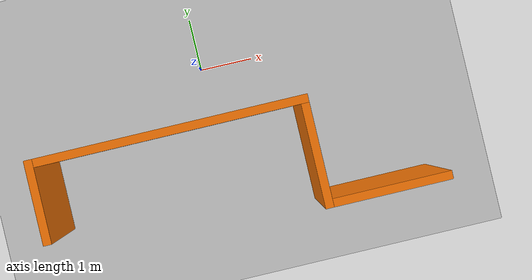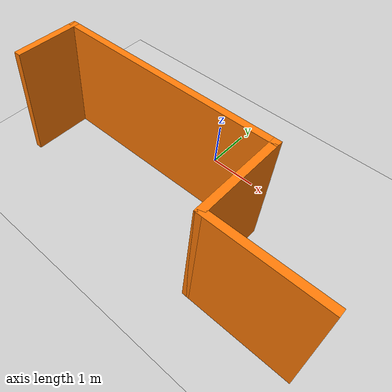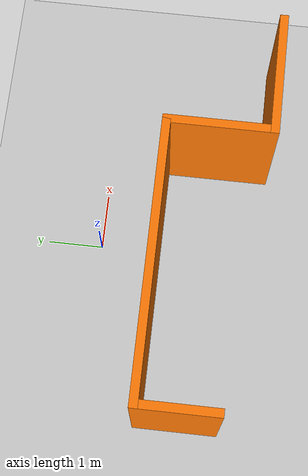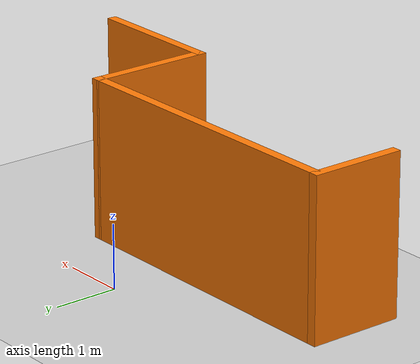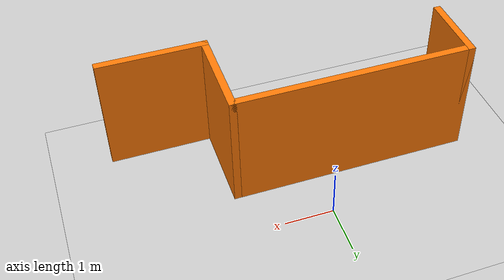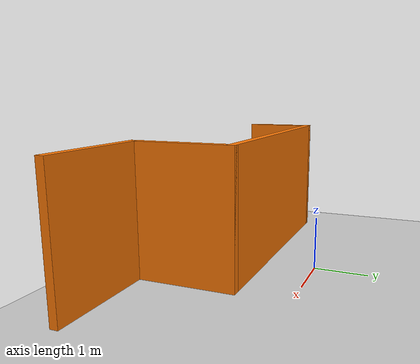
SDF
<?xml version="1.0" ?>
<sdf version="1.5">
  <world name="maze">
    <!-- A global light source -->
    <include>
      <uri>model://sun</uri>
    </include>
    <!-- A ground plane -->
    <include>
      <uri>model://ground_plane</uri>
    </include>
    <include>
      <uri>model://asphalt_plane</uri>
    </include>
    <physics name='default_physics' default='0' type='ode'>
      <gravity>0 0 -9.8066</gravity>
      <ode>
        <solver>
          <type>quick</type>
          <iters>10</iters>
          <sor>1.3</sor>
          <use_dynamic_moi_rescaling>0</use_dynamic_moi_rescaling>
        </solver>
        <constraints>
          <cfm>0</cfm>
          <erp>0.2</erp>
          <contact_max_correcting_vel>100</contact_max_correcting_vel>
          <contact_surface_layer>0.001</contact_surface_layer>
        </constraints>
      </ode>
      <max_step_size>0.004</max_step_size>
      <real_time_factor>1</real_time_factor>
      <real_time_update_rate>250</real_time_update_rate>
      <magnetic_field>6.0e-6 2.3e-5 -4.2e-5</magnetic_field>
    </physics>

<model name='just_test'>
    <pose frame=''>0.285 -1.945 0 0 -0 0</pose>
    <link name='Wall_0'>
      <collision name='Wall_0_Collision'>
        <geometry>
          <box>
            <size>1.5 0.15 2.5</size>
          </box>
        </geometry>
        <pose frame=''>0 0 1.25 0 -0 0</pose>
      </collision>
      <visual name='Wall_0_Visual'>
        <pose frame=''>0 0 1.25 0 -0 0</pose>
        <geometry>
          <box>
            <size>1.5 0.15 2.5</size>
          </box>
        </geometry>
        <material>
          <script>
            <uri>file://media/materials/scripts/gazebo.material</uri>
            <name>Gazebo/Grey</name>
          </script>
          <ambient>0.996078 0.47451 0.0196078 1</ambient>
        </material>
        <meta>
          <layer>0</layer>
        </meta>
      </visual>
      <pose frame=''>-3.475 0.25 0 0 -0 1.5708</pose>
    </link>
    <link name='Wall_1'>
      <collision name='Wall_1_Collision'>
        <geometry>
          <box>
            <size>5 0.15 2.5</size>
          </box>
        </geometry>
        <pose frame=''>0 0 1.25 0 -0 0</pose>
      </collision>
      <visual name='Wall_1_Visual'>
        <pose frame=''>0 0 1.25 0 -0 0</pose>
        <geometry>
          <box>
            <size>5 0.15 2.5</size>
          </box>
        </geometry>
        <material>
          <script>
            <uri>file://media/materials/scripts/gazebo.material</uri>
            <name>Gazebo/Grey</name>
          </script>
          <ambient>0.996078 0.47451 0.0196078 1</ambient>
        </material>
        <meta>
          <layer>0</layer>
        </meta>
      </visual>
      <pose frame=''>-1.05 0.925 0 0 -0 0</pose>
    </link>
    <link name='Wall_2'>
      <collision name='Wall_2_Collision'>
        <geometry>
          <box>
            <size>2 0.15 2.5</size>
          </box>
        </geometry>
        <pose frame=''>0 0 1.25 0 -0 0</pose>
      </collision>
      <visual name='Wall_2_Visual'>
        <pose frame=''>0 0 1.25 0 -0 0</pose>
        <geometry>
          <box>
            <size>2 0.15 2.5</size>
          </box>
        </geometry>
        <material>
          <script>
            <uri>file://media/materials/scripts/gazebo.material</uri>
            <name>Gazebo/Grey</name>
          </script>
          <ambient>0.996078 0.47451 0.0196078 1</ambient>
        </material>
        <meta>
          <layer>0</layer>
        </meta>
      </visual>
      <pose frame=''>1.375 0 0 0 -0 -1.5708</pose>
    </link>
    <link name='Wall_3'>
      <collision name='Wall_3_Collision'>
        <geometry>
          <box>
            <size>2.25 0.15 2.5</size>
          </box>
        </geometry>
        <pose frame=''>0 0 1.25 0 -0 0</pose>
      </collision>
      <visual name='Wall_3_Visual'>
        <pose frame=''>0 0 1.25 0 -0 0</pose>
        <geometry>
          <box>
            <size>2.25 0.15 2.5</size>
          </box>
        </geometry>
        <material>
          <script>
            <uri>file://media/materials/scripts/gazebo.material</uri>
            <name>Gazebo/Grey</name>
          </script>
          <ambient>0.996078 0.47451 0.0196078 1</ambient>
        </material>
        <meta>
          <layer>0</layer>
        </meta>
      </visual>
      <pose frame=''>2.425 -0.925 0 0 -0 0</pose>
    </link>
    <static>1</static>
  </model>
  </world>

</sdf>
